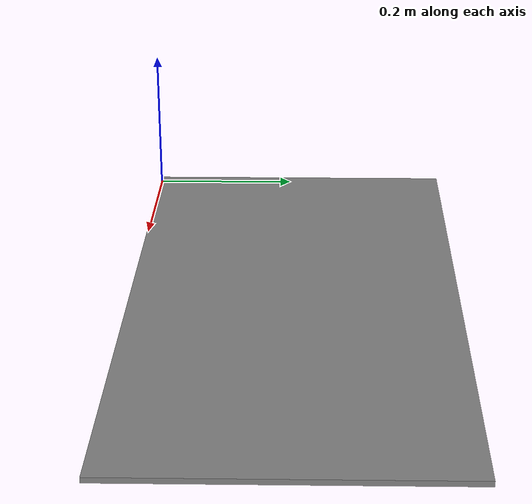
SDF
<?xml version="1.0" ?>
<sdf version="1.6">
  <model name="plate">
    <static>true</static>
    <link name="link">
      <collision name="collision">
        <geometry>
          <mesh>
            <scale>4 2 2</scale>
            <uri>model://plate/meshes/plate.dae</uri>
          </mesh>
        </geometry>
      </collision>
      <visual name="visual">
        <geometry>
          <mesh>
            <scale>4 2 2</scale>
            <uri>model://plate/meshes/plate.dae</uri>
          </mesh>
        </geometry>
      </visual>
    </link>
  </model>
</sdf>
